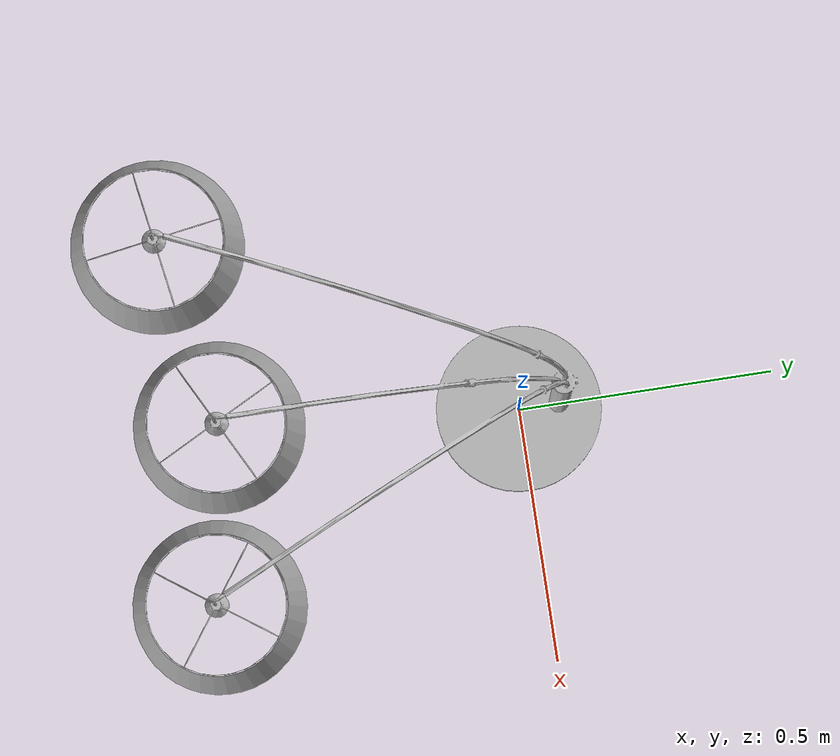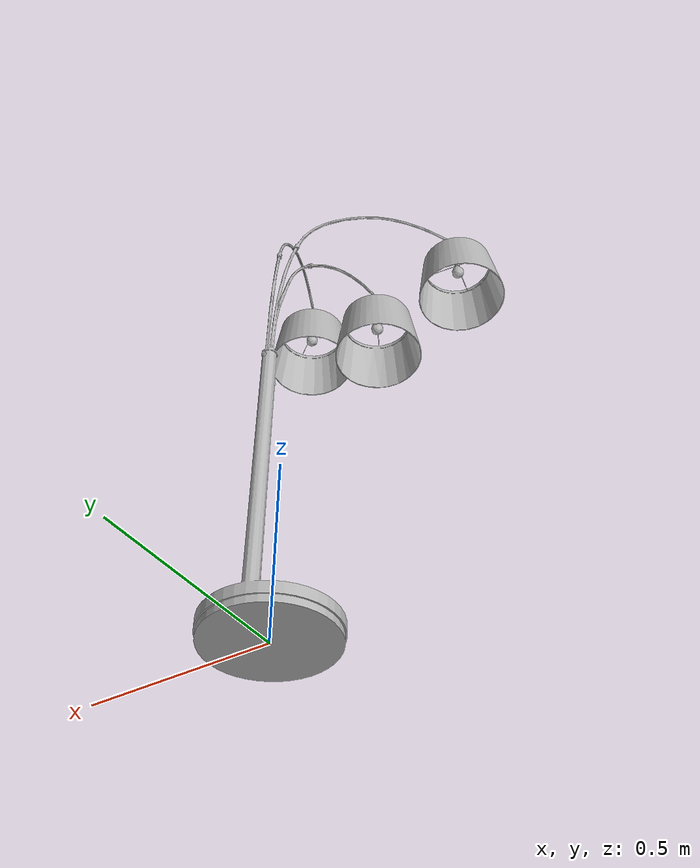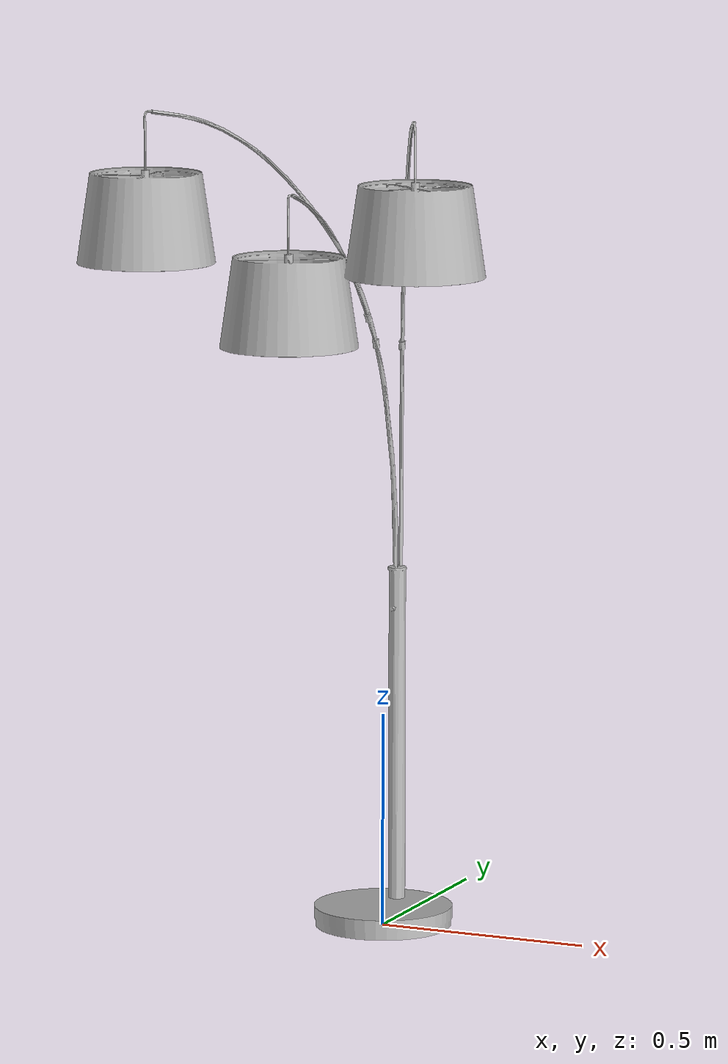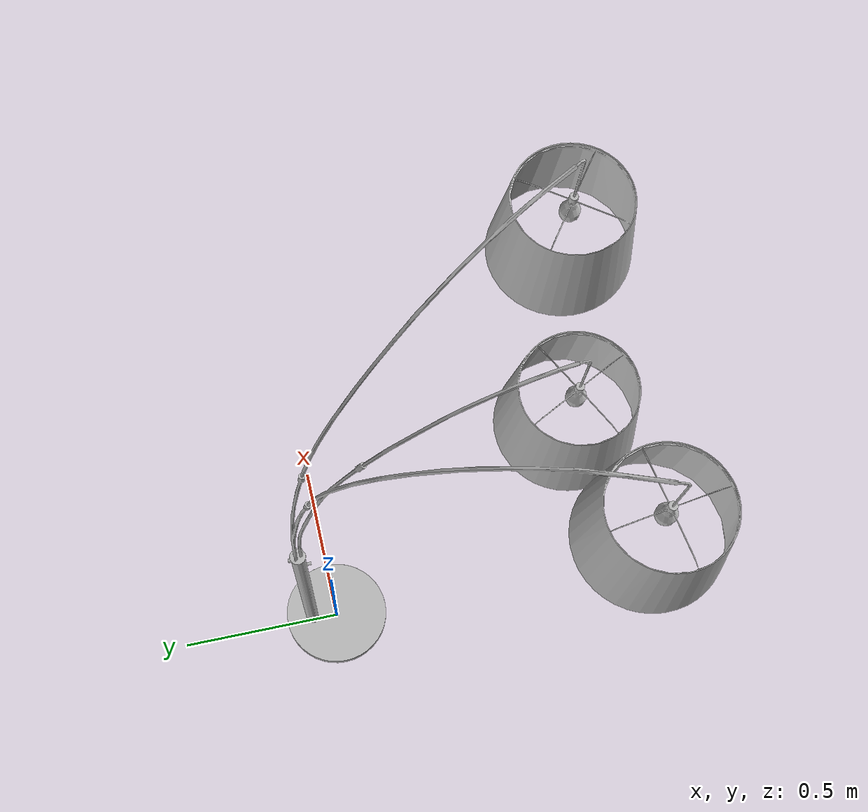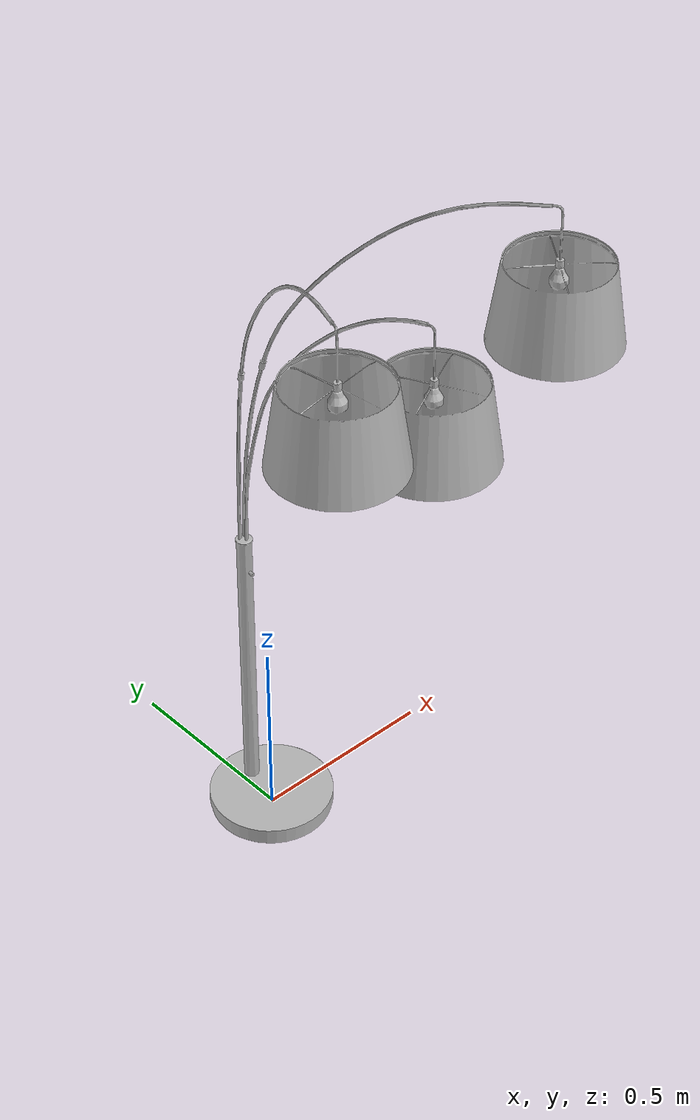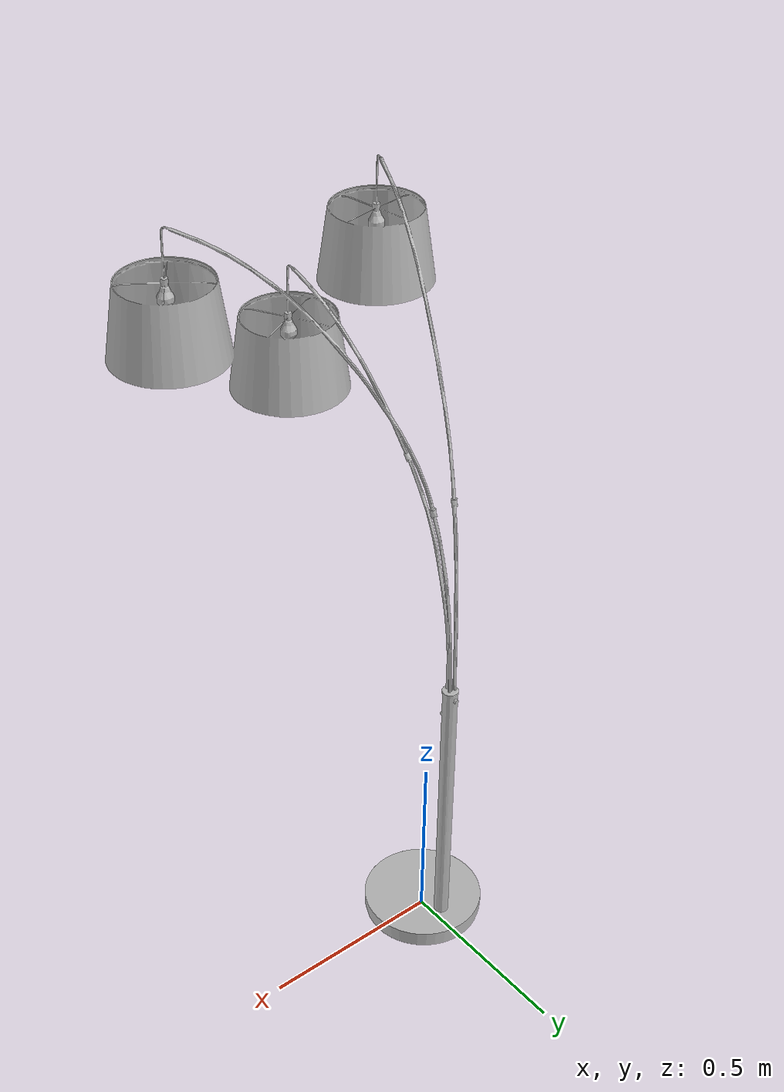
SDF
<sdf version="1.6">
	<model name="FloorLamps_Oe4c82ba7af6_lod0">
		<link name="main_link">
			<visual name="visual_RootNode">
				<geometry>
					<mesh>
						<uri>model://FloorLamps_Oe4c82ba7af6_lod0/meshes/visual_RootNode.dae</uri>
					</mesh>
				</geometry>
			</visual>
			<collision name="collision_RootNode_lod0_0">
				<geometry>
					<mesh>
						<uri>model://FloorLamps_Oe4c82ba7af6_lod0/meshes/collision_RootNode_lod0_0.dae</uri>
					</mesh>
				</geometry>
			</collision>
		</link>
	</model>
</sdf>
